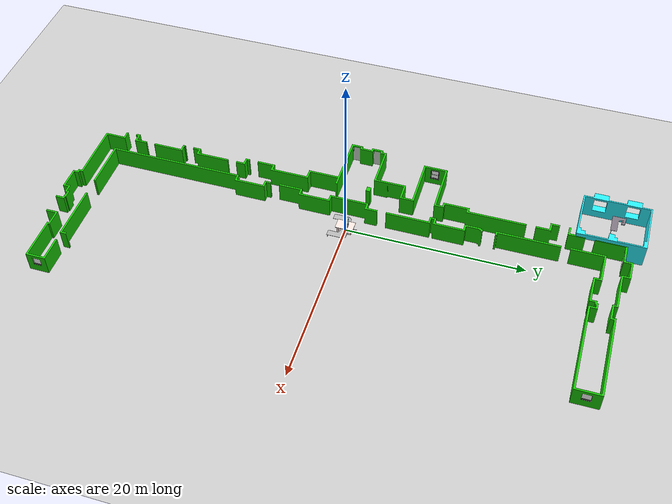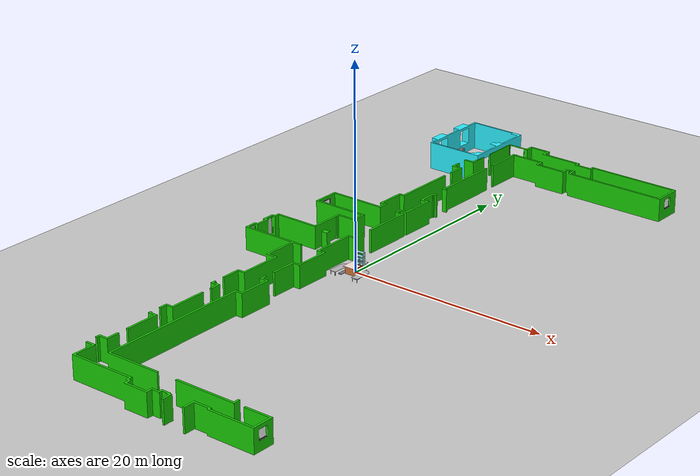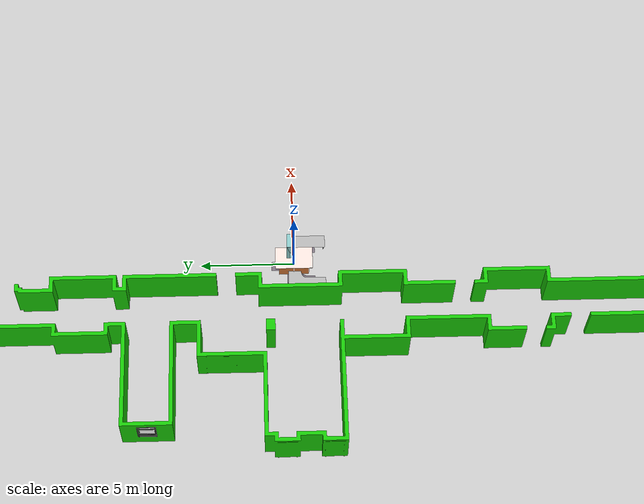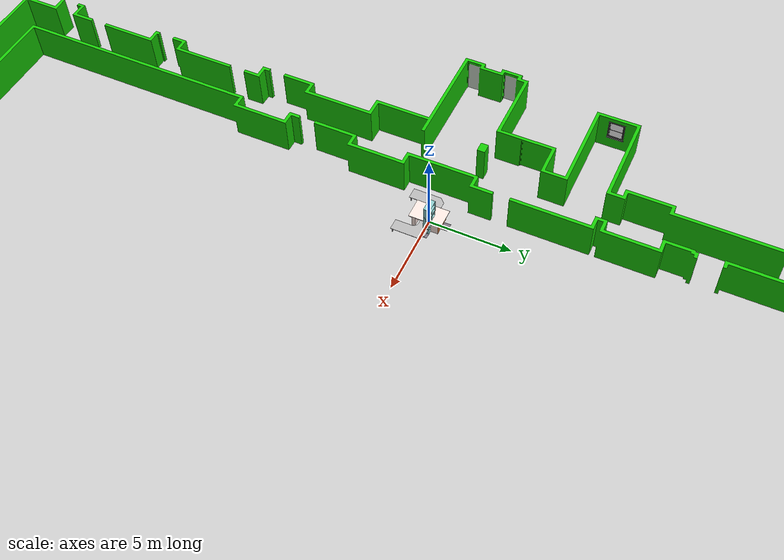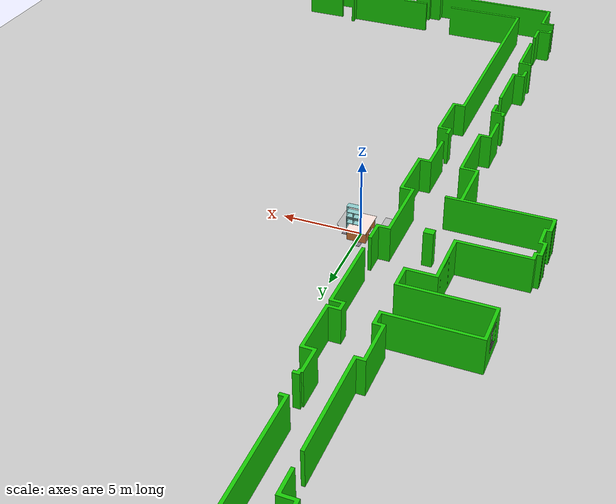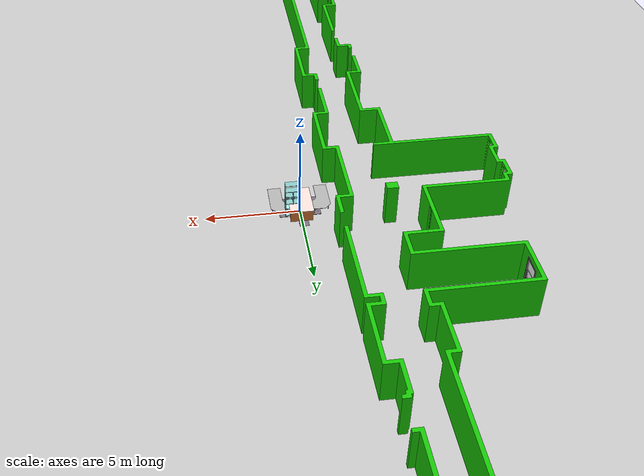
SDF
<sdf version="1.6">
 <world name="default">
  <include><uri>model://ground_plane</uri></include>
  <include><uri>model://sun</uri></include>
  <include><uri>model://ROOM329_Hallway</uri></include>
  <include><uri>model://Desk_1_FL</uri></include>
  <include><uri>model://Desk_1_FR</uri></include>
  <model name="Desk_1_FR_0">
   <pose>-8.86451 28.10427 0.718 -4e-06 -0 -3.14108</pose>
   <include><uri>model://Desk_1_FR</uri></include>
  </model>
  <include><uri>model://Table</uri></include>
  <include><uri>model://Assem_long</uri></include>
  <include><uri>model://Desk_2_L</uri></include>
  <include><uri>model://Desk_3_4x</uri></include>
  <include><uri>model://Drawer_Light_Brown</uri></include>
  <include><uri>model://Drawer_On_Top</uri></include>
  <include><uri>model://Shelf_2_FL</uri></include>
  <include><uri>model://Shelf_2_FR</uri></include>
  <include><uri>model://Shelf_FL</uri></include>
  <include><uri>model://Shelf_FR</uri></include>
  <include><uri>model://Shelf_ML</uri></include>
  <include><uri>model://Shelf_MR</uri></include>
  <include><uri>model://xArm7_table_m</uri></include>
  <include><uri>model://Shelf_MR</uri></include>
  <include><uri>model://Shelf_MR</uri></include>
  <include><uri>model://Shelf_MR</uri></include>
 </world>
</sdf>

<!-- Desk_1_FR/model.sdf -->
<sdf version='1.6'>
  <model name='Desk_1_FR'>
    <link name='Desk_1_FR'>
      <pose frame=''>0 0 0 0 -0 0</pose>
      <inertial>
        <pose frame=''>0.39531 -0.35406 -0.14663 0 -0 0</pose>
        <mass>61.693</mass>
        <inertia>
          <ixx>17.631</ixx>
          <ixy>12.655</ixy>
          <ixz>3.0172</ixz>
          <iyy>31.98</iyy>
          <iyz>2.8376</iyz>
          <izz>43.808</izz>
        </inertia>
      </inertial>
      <collision name='Desk_1_FR_collision'>
        <pose frame=''>0 0 0 1.5708 -0 0</pose>
        <geometry>
          <mesh>
            <scale>1 1 1</scale>
            <uri>model://Desk_1_FR/meshes/Desk_1_FR.dae</uri>
          </mesh>
        </geometry>
      </collision>
      <visual name='Desk_1_FR_visual'>
        <pose frame=''>0 0 0 1.5708 -0 0</pose>
        <geometry>
          <mesh>
            <scale>1 1 1</scale>
            <uri>model://Desk_1_FR/meshes/Desk_1_FR.dae</uri>
          </mesh>
        </geometry>
      </visual>
    </link>
  </model>
</sdf>

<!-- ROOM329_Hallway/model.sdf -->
<sdf version='1.6'>
  <model name='ROOM329_Hallway'>
    <!-- HALLWAY LINK SDF -->
    <link name='SLAM_Hallway'>
      <pose frame=''>0 0 1.1929 0 -0 3.142 </pose>
      <inertial>
        <pose frame=''>-4.1092 -1.38 -2.0568 0 -0 0</pose>
        <mass>255709</mass>
        <inertia>
          <ixx>8.1871e+06</ixx>
          <ixy>-6.35011e-11</ixy>
          <ixz>977800</ixz>
          <iyy>8.6249e+06</iyy>
          <iyz>-5.11868e-10</iyz>
          <izz>470450</izz>
        </inertia>
      </inertial>
      <collision name='SLAM_Hallway_collision'>
        <pose frame=''>0 0 0 0 -0 0</pose>
        <geometry>
          <mesh>
            <scale>1 1 1</scale>
            <uri>model://SLAM_Hallway/meshes/SLAM_Hallway.dae</uri>
          </mesh>
        </geometry>
      </collision>
      <visual name='SLAM_Hallway_visual'>
        <pose frame=''>0 0 0 0 -0 0</pose>
        <geometry>
          <mesh>
            <scale>1 1 1</scale>
            <uri>model://SLAM_Hallway/meshes/SLAM_Hallway.dae</uri>
          </mesh>
        </geometry>
      </visual>
    </link>

    <!-- ROOM 329 SDF LINK -->
    <link name='Robotics_room'>
      <pose frame=''>-7.2332 27.9420 0.01 0 0 0 -0 0</pose>
      <inertial>
        <pose frame=''>0.0031 -0.0622 1.2969 0 -0 0</pose>
        <mass>15710</mass>
        <inertia>
          <ixx>122580</ixx>
          <ixy>2047.8</ixy>
          <ixz>-4128</ixz>
          <iyy>111680</iyy>
          <iyz>-272.43</iyz>
          <izz>212140</izz>
        </inertia>
      </inertial>
      <collision name='Robotics_room_collision'>
        <pose frame=''>0 0 0 1.5708 -0 0</pose>
        <geometry>
          <mesh>
            <scale>1 1 1</scale>
            <uri>model://Robotics_room/meshes/Robotics_room.dae</uri>
          </mesh>
        </geometry>
      </collision>
      <visual name='Robotics_room_visual'>
        <pose frame=''>0 0 0 1.5708 -0 0</pose>
        <geometry>
          <mesh>
            <scale>1 1 1</scale>
            <uri>model://Robotics_room/meshes/Robotics_room.dae</uri>
          </mesh>
        </geometry>
      </visual>
    </link>

<!-- Adding joints -->
    <joint name="Hallway_to_world" type="fixed">
      <parent>world</parent>
      <child>SLAM_Hallway</child>
      <pose>0 0 0 0 0 0</pose>
    </joint>

    <joint name="Room_to_hallway" type="fixed">
      <parent>SLAM_Hallway</parent>
      <child>Robotics_room</child>
      <pose>-7.2332 27.9420 0 0 0 0</pose>
    </joint>

  <static>false</static>
  </model>
</sdf>

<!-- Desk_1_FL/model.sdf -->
<sdf version='1.6'>
  <model name='Desk_1_FL'>
    <link name='Desk_1_FL'>
      <pose frame=''>0 0 0 0 -0 0</pose>
      <inertial>
        <pose frame=''>-0.36701 -0.35406 -0.14663 0 -0 0</pose>
        <mass>61.693</mass>
        <inertia>
          <ixx>17.631</ixx>
          <ixy>-12.318</ixy>
          <ixz>-2.627</ixz>
          <iyy>33.311</iyy>
          <iyz>2.8376</iyz>
          <izz>45.139</izz>
        </inertia>
      </inertial>
      <collision name='Desk_1_FL_collision'>
        <pose frame=''>0 0 0 1.5708 -0 0</pose>
        <geometry>
          <mesh>
            <scale>1 1 1</scale>
            <uri>model://Desk_1_FL/meshes/Desk_1_FL.dae</uri>
          </mesh>
        </geometry>
      </collision>
      <visual name='Desk_1_FL_visual'>
        <pose frame=''>0 0 0 1.5708 -0 0</pose>
        <geometry>
          <mesh>
            <scale>1 1 1</scale>
            <uri>model://Desk_1_FL/meshes/Desk_1_FL.dae</uri>
          </mesh>
        </geometry>
      </visual>
    </link>
  </model>
</sdf>

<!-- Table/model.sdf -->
<sdf version='1.6'>
  <model name='Table'>
    <link name='Table'>
      <pose frame=''>0 0 0 0 -0 0</pose>
      <inertial>
        <pose frame=''>0 -0 0.40389 0 -0 0</pose>
        <mass>1464.6</mass>
        <inertia>
          <ixx>402.61</ixx>
          <ixy>3.4365e-14</ixy>
          <ixz>-1.3974e-14</ixz>
          <iyy>239.46</iyy>
          <iyz>2.4428e-14</iyz>
          <izz>483.74</izz>
        </inertia>
      </inertial>
      <collision name='Table_collision'>
        <pose frame=''>0 0 0 1.5708 -0 0</pose>
        <geometry>
          <mesh>
            <scale>1 1 1</scale>
            <uri>model://Table/meshes/Table_new.dae</uri>
          </mesh>
        </geometry>
      </collision>
      <visual name='Table_visual'>
        <pose frame=''>0 0 0 1.5708 -0 0</pose>
        <geometry>
          <mesh>
            <scale>1 1 1</scale>
            <uri>model://Table/meshes/Table_new.dae</uri>
          </mesh>
        </geometry>
      </visual>
    </link>
  </model>
</sdf>

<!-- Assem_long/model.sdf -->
<sdf version='1.6'>
  <model name='Assem_long'>
    <link name='Assem_long'>
      <pose frame=''>0 0 0 0 -0 0</pose>
      <inertial>
        <pose frame=''>-0.055611 0.058011 0.24973 0 -0 0</pose>
        <mass>191.42</mass>
        <inertia>
          <ixx>34.827</ixx>
          <ixy>8.7757e-16</ixy>
          <ixz>-2.5068e-15</ixz>
          <iyy>39.739</iyy>
          <iyz>0.24573</iyz>
          <izz>23.642</izz>
        </inertia>
      </inertial>
      <collision name='Assem_long_collision'>
        <pose frame=''>0 0 0 0 -0 0</pose>
        <geometry>
          <mesh>
            <scale>1 1 1</scale>
            <uri>model://Assem_long/meshes/Assem_long.STL</uri>
          </mesh>
        </geometry>
      </collision>
      <visual name='Assem_long_visual'>
        <pose frame=''>0 0 0 0 -0 0</pose>
        <geometry>
          <mesh>
            <scale>1 1 1</scale>
            <uri>model://Assem_long/meshes/Assem_long.STL</uri>
          </mesh>
        </geometry>
      </visual>
    </link>
  </model>
</sdf>

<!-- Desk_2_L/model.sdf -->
<sdf version='1.6'>
  <model name='Desk_2_L'>
    <link name='Desk_2_L'>
      <pose frame=''>0 0 0 0 -0 0</pose>
      <inertial>
        <pose frame=''>-0.057753 0.30478 -0.089376 0 -0 0</pose>
        <mass>24.515</mass>
        <inertia>
          <ixx>8.7834</ixx>
          <ixy>0.55953</ixy>
          <ixz>0.019316</ixz>
          <iyy>1.5784</iyy>
          <iyz>-0.092859</iyz>
          <izz>8.8425</izz>
        </inertia>
      </inertial>
      <collision name='Desk_2_L_collision'>
        <pose frame=''>0 0 0 1.5708 -0 0</pose>
        <geometry>
          <mesh>
            <scale>1 1 1</scale>
            <uri>model://Desk_2_L/meshes/Desk_2_L.dae</uri>
          </mesh>
        </geometry>
      </collision>
      <visual name='Desk_2_L_visual'>
        <pose frame=''>0 0 0 1.5708 -0 0</pose>
        <geometry>
          <mesh>
            <scale>1 1 1</scale>
            <uri>model://Desk_2_L/meshes/Desk_2_L.dae</uri>
          </mesh>
        </geometry>
      </visual>
    </link>
  </model>
</sdf>

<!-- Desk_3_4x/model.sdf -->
<sdf version='1.6'>
  <model name='Desk_3_4x'>
    <link name='Desk_3_4x'>
      <pose frame=''>0 0 0 0 -0 0</pose>
      <inertial>
        <pose frame=''>-0 0 -0.089294 0 -0 0</pose>
        <mass>24.974</mass>
        <inertia>
          <ixx>1.9138</ixx>
          <ixy>-4.1335e-16</ixy>
          <ixz>-5.0338e-16</ixz>
          <iyy>6.0372</iyy>
          <iyz>1.1077e-15</iyz>
          <izz>6.3884</izz>
        </inertia>
      </inertial>
      <collision name='Desk_3_4x_collision'>
        <pose frame=''>0 0 0 1.5708 -0 0</pose>
        <geometry>
          <mesh>
            <scale>1 1 1</scale>
            <uri>model://Desk_3_4x/meshes/Desk_3_4x.STL</uri>
          </mesh>
        </geometry>
      </collision>
      <visual name='Desk_3_4x_visual'>
        <pose frame=''>0 0 0 1.5708 -0 0</pose>
        <geometry>
          <mesh>
            <scale>1 1 1</scale>
            <uri>model://Desk_3_4x/meshes/Desk_3_4x.STL</uri>
          </mesh>
        </geometry>
      </visual>
    </link>
  </model>
</sdf>

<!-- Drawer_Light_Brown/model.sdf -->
<sdf version='1.6'>
  <model name='Drawer_Light_Brown'>
    <link name='Drawer_Light_Brown'>
      <pose frame=''>0 0 0 0 -0 0</pose>
      <inertial>
        <pose frame=''>-0 -0.008544 0.2875 0 -0 0</pose>
        <mass>45</mass>
        <inertia>
          <ixx>8.159</ixx>
          <ixy>1.9709e-17</ixy>
          <ixz>-7.5566e-17</ixz>
          <iyy>6.0744</iyy>
          <iyz>-8.4879e-05</iyz>
          <izz>6.3113</izz>
        </inertia>
      </inertial>
      <collision name='Drawer_Light_Brown_collision'>
        <pose frame=''>0 0 0 1.5708 -0 0</pose>
        <geometry>
          <mesh>
            <scale>1 1 1</scale>
            <uri>model://Drawer_Light_Brown/meshes/Drawer_Light_Brown_new.dae</uri>
          </mesh>
        </geometry>
      </collision>
      <visual name='Drawer_Light_Brown_visual'>
        <pose frame=''>0 0 0 1.5708 -0 0</pose>
        <geometry>
          <mesh>
            <scale>1 1 1</scale>
            <uri>model://Drawer_Light_Brown/meshes/Drawer_Light_Brown_new.dae</uri>
          </mesh>
        </geometry>
      </visual>
    </link>
  </model>
</sdf>

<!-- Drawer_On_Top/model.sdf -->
<sdf version='1.6'>
  <model name='Drawer_On_Top'>
    <link name='Drawer_On_Top'>
      <pose frame=''>0 0 0 0 -0 0</pose>
      <inertial>
        <pose frame=''>-0 -0.007675 0.23518 0 -0 0</pose>
        <mass>35</mass>
        <inertia>
          <ixx>3.9466</ixx>
          <ixy>1.5446e-16</ixy>
          <ixz>-1.3928e-16</ixz>
          <iyy>3.104</iyy>
          <iyz>0.01977</iyz>
          <izz>3.4589</izz>
        </inertia>
      </inertial>
      <collision name='Drawer_On_Top_collision'>
        <pose frame=''>0 0 0 1.5708 -0 0</pose>
        <geometry>
          <mesh>
            <scale>1 1 1</scale>
            <uri>model://Drawer_On_Top/meshes/Drawer_On_Top.dae</uri>
          </mesh>
        </geometry>
      </collision>
      <visual name='Drawer_On_Top_visual'>
        <pose frame=''>0 0 0 1.5708 -0 0</pose>
        <geometry>
          <mesh>
            <scale>1 1 1</scale>
            <uri>model://Drawer_On_Top/meshes/Drawer_On_Top.dae</uri>
          </mesh>
        </geometry>
      </visual>
    </link>
  </model>
</sdf>

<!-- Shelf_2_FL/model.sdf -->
<sdf version='1.6'>
  <model name='Shelf_2_FL'>
    <link name='Shelf_2_FL'>
      <pose frame=''>0 0 0 0 -0 0</pose>
      <inertial>
        <pose frame=''>0.399 0.14621 0.79058 0 -0 0</pose>
        <mass>36.829</mass>
        <inertia>
          <ixx>10.258</ixx>
          <ixy>4.9197e-06</ixy>
          <ixz>7.9701e-06</ixz>
          <iyy>13.096</iyy>
          <iyz>0.53149</iyz>
          <izz>3.9755</izz>
        </inertia>
      </inertial>
      <collision name='Shelf_2_FL_collision'>
        <pose frame=''>0 0 0 1.5708 -0 0</pose>
        <geometry>
          <mesh>
            <scale>1 1 1</scale>
            <uri>model://Shelf_2_FL/meshes/Shelf_2_FL.dae</uri>
          </mesh>
        </geometry>
      </collision>
      <visual name='Shelf_2_FL_visual'>
        <pose frame=''>0 0 0 1.5708 -0 0</pose>
        <geometry>
          <mesh>
            <scale>1 1 1</scale>
            <uri>model://Shelf_2_FL/meshes/Shelf_2_FL.dae</uri>
          </mesh>
        </geometry>
      </visual>
    </link>
  </model>
</sdf>

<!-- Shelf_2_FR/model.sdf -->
<sdf version='1.6'>
  <model name='Shelf_2_FR'>
    <link name='Shelf_2_FR'>
      <pose frame=''>0 0 0 0 -0 0</pose>
      <inertial>
        <pose frame=''>0.399 0.18522 0.96951 0 -0 0</pose>
        <mass>43.612</mass>
        <inertia>
          <ixx>18.296</ixx>
          <ixy>1.6757e-15</ixy>
          <ixz>-1.9427e-14</ixz>
          <iyy>21.874</iyy>
          <iyz>0.11138</iyz>
          <izz>4.6243</izz>
        </inertia>
      </inertial>
      <collision name='Shelf_2_FR_collision'>
        <pose frame=''>0 0 0 1.5708 -0 0</pose>
        <geometry>
          <mesh>
            <scale>1 1 1</scale>
            <uri>model://Shelf_2_FR/meshes/Shelf_2_FR.dae</uri>
          </mesh>
        </geometry>
      </collision>
      <visual name='Shelf_2_FR_visual'>
        <pose frame=''>0 0 0 1.5708 -0 0</pose>
        <geometry>
          <mesh>
            <scale>1 1 1</scale>
            <uri>model://Shelf_2_FR/meshes/Shelf_2_FR.dae</uri>
          </mesh>
        </geometry>
      </visual>
    </link>
  </model>
</sdf>

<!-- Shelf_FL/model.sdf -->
<sdf version='1.6'>
  <model name='Shelf_FL'>
    <link name='Shelf_FL'>
      <pose frame=''>0 0 0 0 -0 0</pose>
      <inertial>
        <pose frame=''>0.398 0.18108 0.82092 0 -0 0</pose>
        <mass>33.816</mass>
        <inertia>
          <ixx>9.7591</ixx>
          <ixy>1.4536e-16</ixy>
          <ixz>-3.7964e-15</ixz>
          <iyy>12.571</iyy>
          <iyz>0.18041</iyz>
          <izz>3.6409</izz>
        </inertia>
      </inertial>
      <collision name='Shelf_FL_collision'>
        <pose frame=''>0 0 0 1.5708 -0 0</pose>
        <geometry>
          <mesh>
            <scale>1 1 1</scale>
            <uri>model://Shelf_FL/meshes/Shelf_FL.dae</uri>
          </mesh>
        </geometry>
      </collision>
      <visual name='Shelf_FL_visual'>
        <pose frame=''>0 0 0 1.5708 -0 0</pose>
        <geometry>
          <mesh>
            <scale>1 1 1</scale>
            <uri>model://Shelf_FL/meshes/Shelf_FL.dae</uri>
          </mesh>
        </geometry>
      </visual>
    </link>
  </model>
</sdf>

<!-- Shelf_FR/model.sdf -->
<sdf version='1.6'>
  <model name='Shelf_FR'>
    <link name='Shelf_FR'>
      <pose frame=''>0 0 0 0 -0 0</pose>
      <inertial>
        <pose frame=''>0.19929 0.15638 0.79121 0 -0 0</pose>
        <mass>26.028</mass>
        <inertia>
          <ixx>7.1088</ixx>
          <ixy>0.00022715</ixy>
          <ixz>0.00034822</ixz>
          <iyy>7.4164</iyy>
          <iyz>0.30495</iyz>
          <izz>1.0756</izz>
        </inertia>
      </inertial>
      <collision name='Shelf_FR_collision'>
        <pose frame=''>0 0 0 1.5708 -0 0</pose>
        <geometry>
          <mesh>
            <scale>1 1 1</scale>
            <uri>model://Shelf_FR/meshes/Shelf_FR.dae</uri>
          </mesh>
        </geometry>
      </collision>
      <visual name='Shelf_FR_visual'>
        <pose frame=''>0 0 0 1.5708 -0 0</pose>
        <geometry>
          <mesh>
            <scale>1 1 1</scale>
            <uri>model://Shelf_FR/meshes/Shelf_FR.dae</uri>
          </mesh>
        </geometry>
      </visual>
    </link>
  </model>
</sdf>

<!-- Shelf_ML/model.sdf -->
<sdf version='1.6'>
  <model name='Shelf_ML'>
    <link name='Shelf_ML'>
      <pose frame=''>0 0 0 0 -0 0</pose>
      <inertial>
        <pose frame=''>0.398 0.1831 1.0191 0 -0 0</pose>
        <mass>47.731</mass>
        <inertia>
          <ixx>18.507</ixx>
          <ixy>1.2585e-15</ixy>
          <ixz>2.6751e-15</ixz>
          <iyy>22.206</iyy>
          <iyz>0.22676</iyz>
          <izz>4.8568</izz>
        </inertia>
      </inertial>
      <collision name='Shelf_ML_collision'>
        <pose frame=''>0 0 0 1.5708 -0 0</pose>
        <geometry>
          <mesh>
            <scale>1 1 1</scale>
            <uri>model://Shelf_ML/meshes/Shelf_ML.dae</uri>
          </mesh>
        </geometry>
      </collision>
      <visual name='Shelf_ML_visual'>
        <pose frame=''>0 0 0 1.5708 -0 0</pose>
        <geometry>
          <mesh>
            <scale>1 1 1</scale>
            <uri>model://Shelf_ML/meshes/Shelf_ML.dae</uri>
          </mesh>
        </geometry>
      </visual>
    </link>
  </model>
</sdf>

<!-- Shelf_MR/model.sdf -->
<sdf version='1.6'>
  <model name='Shelf_MR'>
    <link name='Shelf_MR'>
      <pose frame=''>0 0 0 0 -0 0</pose>
      <inertial>
        <pose frame=''>0.398 0.18355 1.0642 0 -0 0</pose>
        <mass>49.38</mass>
        <inertia>
          <ixx>18.905</ixx>
          <ixy>5.824e-16</ixy>
          <ixz>1.2904e-14</ixz>
          <iyy>22.667</iyy>
          <iyz>0.22359</iyz>
          <izz>4.9572</izz>
        </inertia>
      </inertial>
      <collision name='Shelf_MR_collision'>
        <pose frame=''>0 0 0 1.5708 -0 0</pose>
        <geometry>
          <mesh>
            <scale>1 1 1</scale>
            <uri>model://Shelf_MR/meshes/Shelf_MR.dae</uri>
          </mesh>
        </geometry>
      </collision>
      <visual name='Shelf_MR_visual'>
        <pose frame=''>0 0 0 1.5708 -0 0</pose>
        <geometry>
          <mesh>
            <scale>1 1 1</scale>
            <uri>model://Shelf_MR/meshes/Shelf_MR.dae</uri>
          </mesh>
        </geometry>
      </visual>
    </link>
  </model>
</sdf>

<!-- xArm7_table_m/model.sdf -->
<sdf version='1.6'>
  <model name='xArm7_table_m'>
    <link name='xArm7_table_m'>
      <pose frame=''>0 0 0 0 -0 0</pose>
      <inertial>
        <pose frame=''>-1e-06 -0.000449 -0 0 -0 0</pose>
        <mass>18.25</mass>
        <inertia>
          <ixx>1.7526</ixx>
          <ixy>0.0092329</ixy>
          <ixz>-9.4464e-06</ixz>
          <iyy>1.0779</iyy>
          <iyz>-8.6208e-05</iyz>
          <izz>2.0182</izz>
        </inertia>
      </inertial>
      <collision name='xArm7_table_m_collision'>
        <pose frame=''>0 0 0 1.5708 -0 0</pose>
        <geometry>
          <mesh>
            <scale>1 1 1</scale>
            <uri>model://xArm7_table_m/meshes/xArm7_table_m.dae</uri>
          </mesh>
        </geometry>
      </collision>
      <visual name='xArm7_table_m_visual'>
        <pose frame=''>0 0 0 1.5708 -0 0</pose>
        <geometry>
          <mesh>
            <scale>1 1 1</scale>
            <uri>model://xArm7_table_m/meshes/xArm7_table_m.dae</uri>
          </mesh>
        </geometry>
      </visual>
    </link>
  </model>
</sdf>
